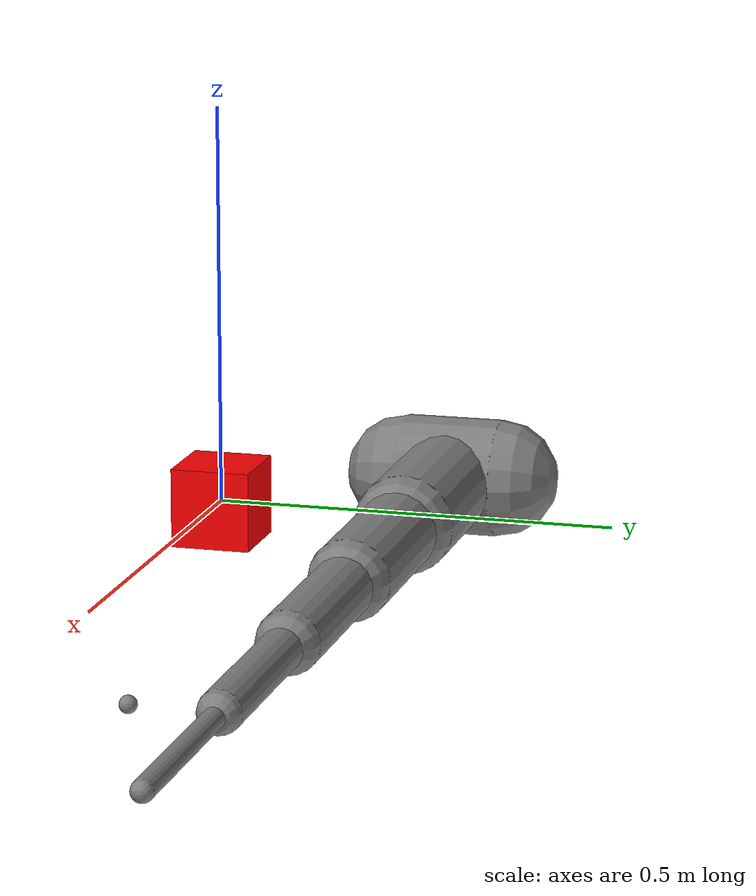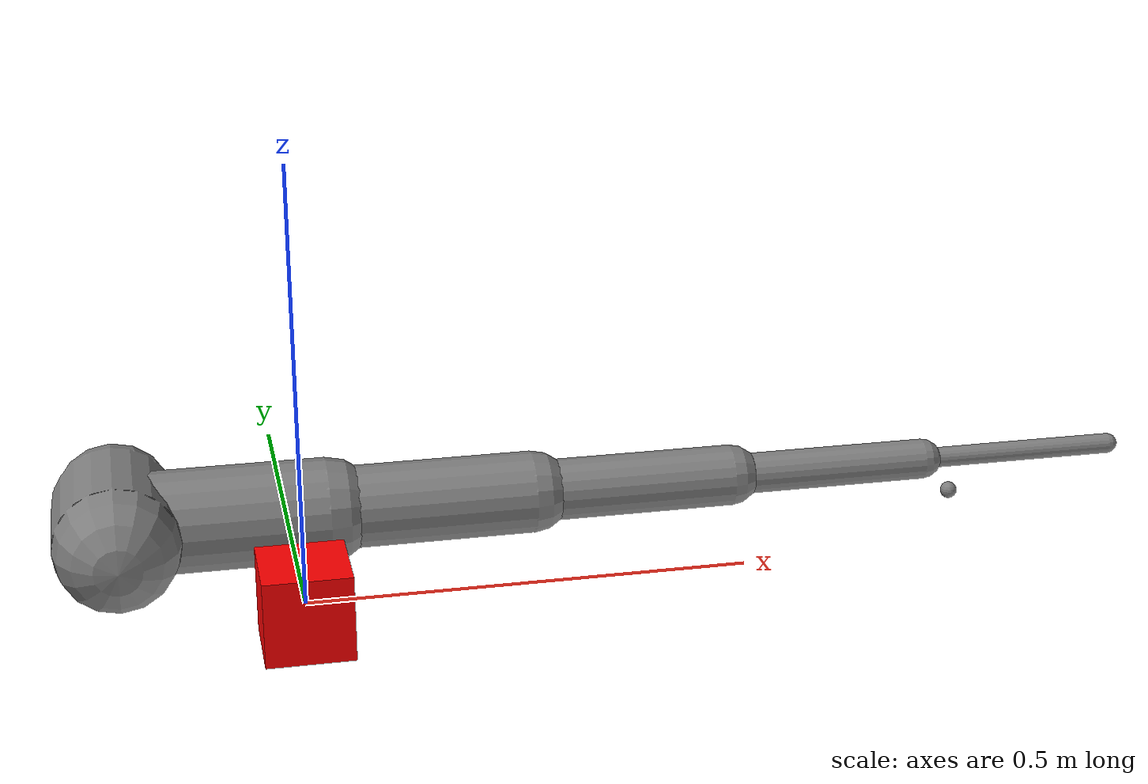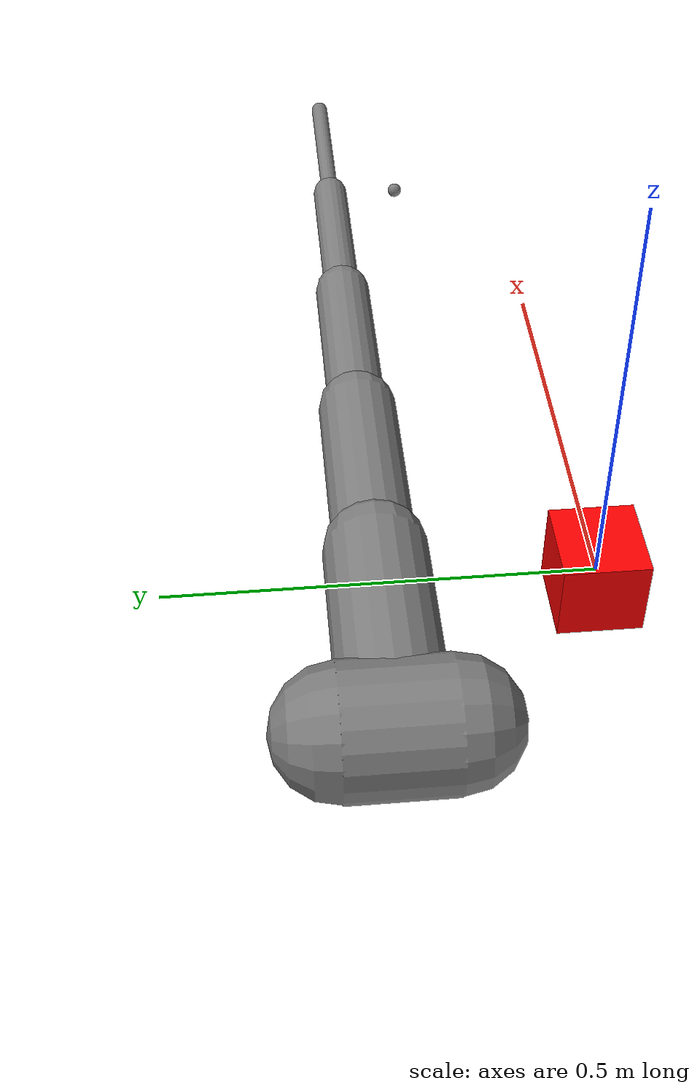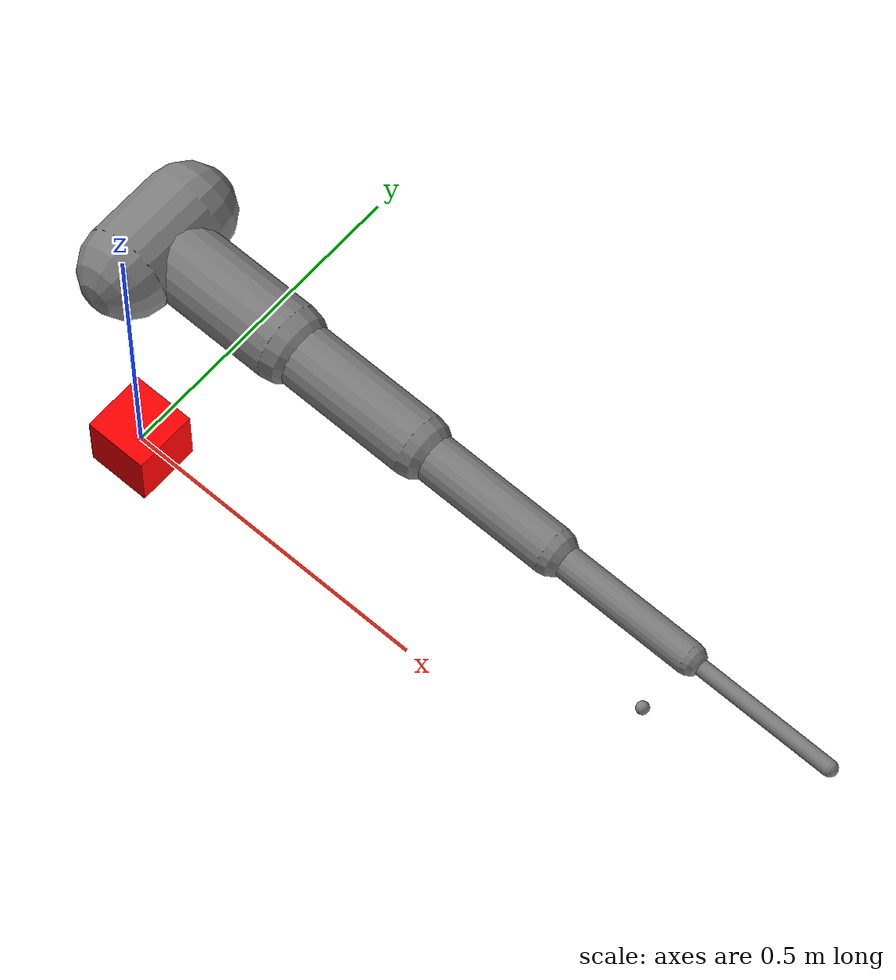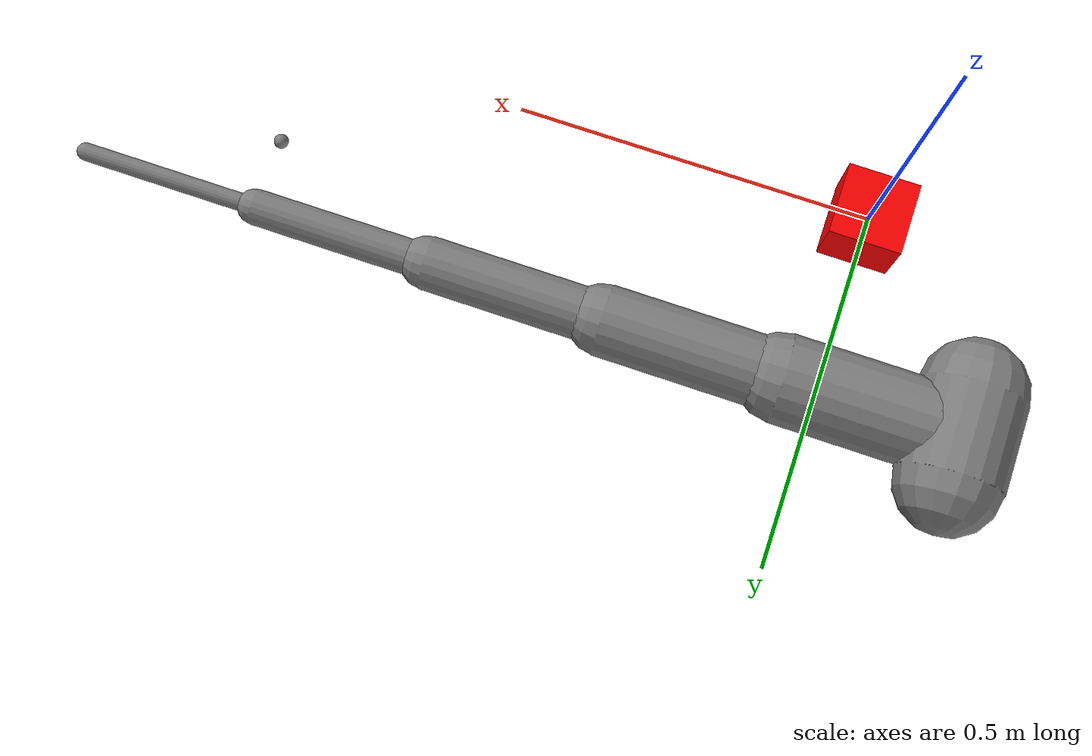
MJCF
<mujoco model="arm3d">

    <compiler inertiafromgeom="true" angle="radian" coordinate="local" />
    <option timestep="0.01" gravity="0 0 0" iterations="20" integrator="RK4" />

    <default>
        <joint limited="true" range="-3.14159 3.14159" armature="0.04" damping="1" />
        <geom friction=".5 .1 .1" margin="0.002" condim="1" contype="0" conaffinity="0" />
        <motor forcelimited="true" forcerange="-5 5"/>
    </default>

    <worldbody>
        <body name="palm" pos="-0.2 0.25 0">
            <geom type="capsule" fromto="0 -0.0625 0 0 0.0625 0" size="0.075"/>

            <body name="proximal_1" pos="0 0 0">
                <joint name="y1" type="hinge" pos="0 0 0" axis="0 1 0" range="-2.5236 2.3963" damping="1.0" />
                <joint name="z1" type="hinge" pos="0 0 0" axis="0 0 1" range="-2.5236 2.3963" damping="1.0" />
                <geom type="capsule"  fromto="0 0 0 0.25 0 0" size="0.0625" contype="1" conaffinity="1"/>
                <body name="distal_1" pos="0.25 0 0">
                    <joint name="y2" type="hinge" pos="0 0 0" axis="0 1 0" range="-2.3213 2.3" damping="1.0"/>
                    <geom type="capsule"  fromto="0 0 0 0.25 0 0" size="0.05" contype="1" conaffinity="1"/>
                    <body name="distal_2" pos="0.25 0 0">
                        <joint name="y3" type="hinge" pos="0 0 0" axis="0 1 0" range="-2.3213 2.3" damping="1.0"/>
                        <joint name="z3" type="hinge" pos="0 0 0" axis="0 0 1" range="-2.3213 2.3" damping="1.0"/>
                        <geom type="capsule" fromto="0 0 0 0.25 0 0" size="0.0375" contype="1" conaffinity="1"/>
                        <body name="distal_3" pos="0.25 0 0">
                            <joint name="y4" type="hinge" pos="0 0 0" axis="0 1 0" range="-2.3213 2.3" damping="1.0"/>
                            <geom type="capsule" fromto="0 0 0 0.25 0 0" size="0.025" contype="1" conaffinity="1"/>
                            <body name="distal_4" pos="0.25 0 0">
                                <joint name="y5" type="hinge" pos="0 0 0" axis="0 0 1" range="-2.3213 2.3" damping="1.0"/>
                                <geom type="capsule" fromto="0 0 0 0.25 0 0" size="0.0125" contype="1" conaffinity="1"/>
                                <site name="tip arm" pos="0 -0.1 0" size="0.01" />
                            </body>
                        </body>
                    </body>
                </body>
            </body>
        </body>

        <body name="goal" pos="0 0 0">
            <geom rgba="1. 0. 0. 1" type="box" size="0.05 0.05 0.05" density='0.00001' contype="0" conaffinity="0"/>
            <site name="goal pos1" pos="0 0 0" size="0.01" />
        </body>

        <body name="distractor_1" pos="0 0 0">
            <geom rgba="1. 1. 0. 1" type="box" size="0.05 0.05 0.05" density='0.00001' contype="0" conaffinity="0"/>
            <site name="goal pos2" pos="0 0 0" size="0.01" />
        </body>

        <body name="distractor_2" pos="0 0 0">
            <geom rgba="0. 1. 0. 1" type="box" size="0.05 0.05 0.05" density='0.00001' contype="0" conaffinity="0"/>
            <site name="goal pos3" pos="0 0 0" size="0.01" />
        </body>
    </worldbody>

    <actuator>
        <motor joint="y1" name="Ay1"/>
        <motor joint="z1" name="Az1"/>
        <motor joint="y2" name="Ay2"/>
        <motor joint="y3" name="Ay3"/>
        <motor joint="z3" name="Az3"/>
        <motor joint="y4" name="Ay4"/>
        <motor joint="y5" name="Ay5"/>
    </actuator>

</mujoco>
